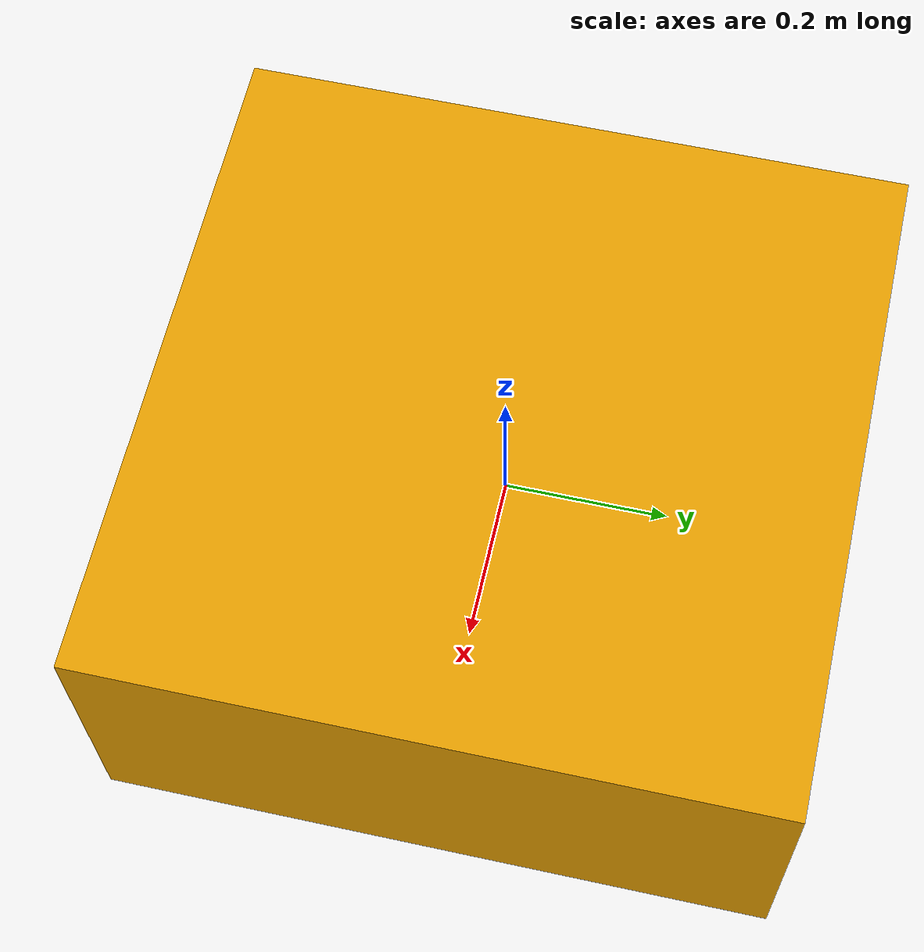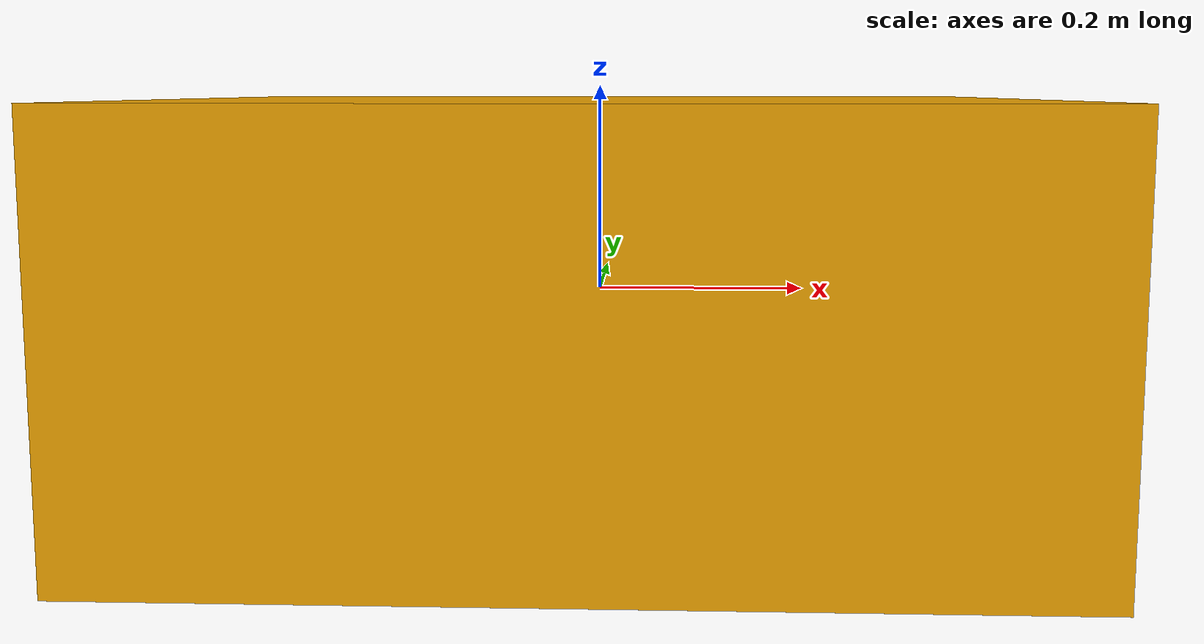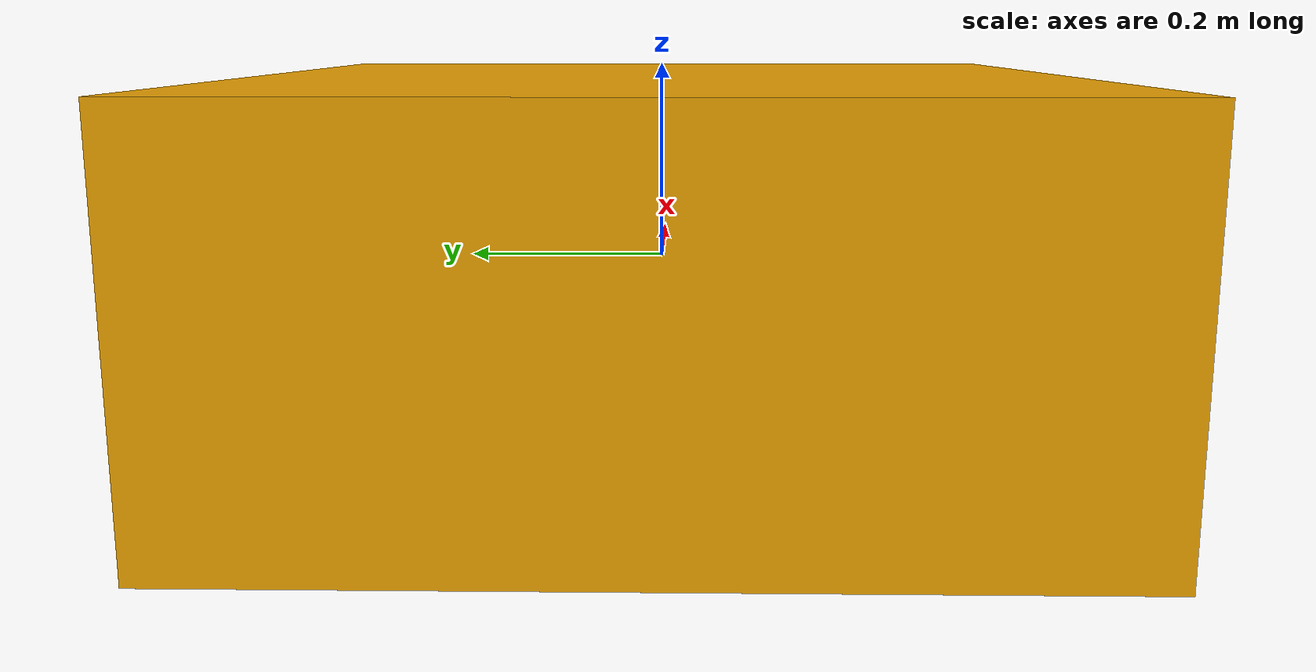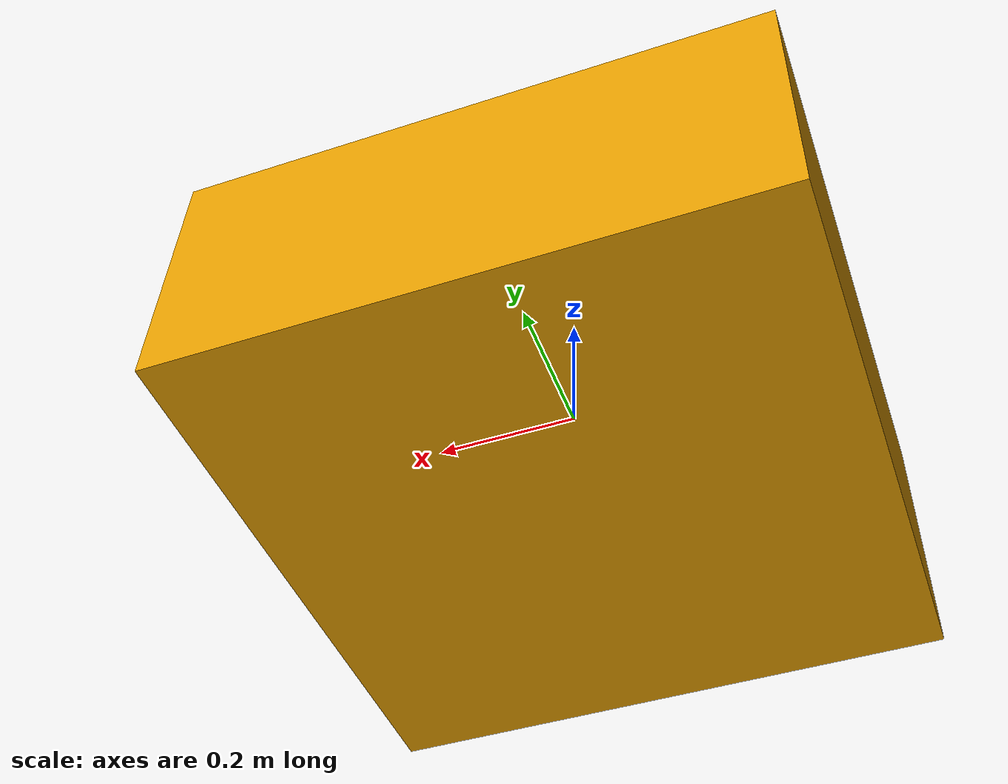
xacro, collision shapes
<?xml version='1.0' encoding='utf-8'?>
<robot name="M100" xmlns:xacro="http://ros.org/wiki/xacro">
  <xacro:arg name="name" default="M100"/>
  <xacro:property name="name" value="$(arg name)"/>
  <link name='${name}/base_link'>
    <inertial>
      <origin xyz='0 0 0' rpy='0 -0 0'/>
      <mass value='3.76'/>
      <inertia ixx='0.017' ixy='0' ixz='0' iyy='0.018' iyz='0' izz='0.028'/>
    </inertial>
    <collision name='base_link_inertia_collision'>
      <origin xyz='0 0 0' rpy='0 -0 0'/>
      <geometry>
        <box size='0.82 0.82 0.375'/>
      </geometry>
    </collision>
    <visual name='base_link_inertia_visual'>
      <origin xyz='0 0 0' rpy='0 -0 0'/>
      <geometry>
        <mesh filename='package://cerberus_m100_sensor_config_1/meshes/m100.dae' scale='1 1 1'/>
      </geometry>
    </visual>
    <visual name='left_flashlight_led'>
      <origin xyz='0.247592 0.24728 -0.017556' rpy='0 -0 2.35619'/>
      <geometry>
        <mesh filename='package://cerberus_m100_sensor_config_1/meshes/cree_xhp70.dae' scale='1 1 1'/>
      </geometry>
    </visual>
    <visual name='right_flashlight_led'>
      <origin xyz='0.247592 -0.24728 -0.017556' rpy='0 -0 0.785398'/>
      <geometry>
        <mesh filename='package://cerberus_m100_sensor_config_1/meshes/cree_xhp70.dae' scale='1 1 1'/>
      </geometry>
    </visual>
    <visual name='camera_visual'>
      <origin xyz='0.172 0 -0.023' rpy='0 0.174533 0'/>
      <geometry>
        <box size='0.02 0.025 0.025'/>
      </geometry>
    </visual>
    <visual name='laser_visual'>
      <origin xyz='0 0 0.05' rpy='0 -0 0'/>
      <geometry>
        <cylinder radius='0.03' length='0.1'/>
      </geometry>
    </visual>
  </link>

  <sensor name='imu_sensor' update_rate='200'>
    <parent link='${name}/base_link'/>
    <origin xyz='0 0 0' rpy='0 -0 0'/>
  </sensor>
  <sensor name='magnetometer' update_rate='20'>
    <parent link='${name}/base_link'/>
    <origin xyz='0 0 0' rpy='0 -0 0'/>
  </sensor>
  <sensor name='camera_front' update_rate='20'>
    <parent link='${name}/base_link'/>
    <origin xyz='0.172 0 -0.023' rpy='0 0.174533 0'/>
    <camera>
      <image width='1440' height='1080' format='R8G8B8' hfov='2.0944' near='0.02' far='100' />
    </camera>
  </sensor>
  <sensor name='front_laser' update_rate='10'>
    <parent link='${name}/base_link'/>
    <origin xyz='0 0 0.05' rpy='0 -0 0'/>
  </sensor>
  <link name='${name}/rotor_0'>
    <inertial>
      <origin xyz='0 0 0' rpy='0 -0 0'/>
      <mass value='0.005'/>
      <inertia ixx='9.75e-07' ixy='0' ixz='0' iyy='8.13545e-05' iyz='0' izz='8.22545e-05'/>
    </inertial>
    <collision name='rotor_0_collision'>
      <origin xyz='0 0 0' rpy='0 -0 0'/>
      <geometry>
        <cylinder radius='0.175' length='0.005'/>
      </geometry>
    </collision>
    <visual name='rotor_0_visual'>
      <origin xyz='0 0 0' rpy='0 -0 0'/>
      <geometry>
        <mesh filename='package://cerberus_m100_sensor_config_1/meshes/m100_propeller_ccw.dae' scale='0.175 0.175 0.175'/>
      </geometry>
    </visual>
  </link>
  <link name='${name}/rotor_1'>
    <inertial>
      <origin xyz='0 0 0' rpy='0 -0 0'/>
      <mass value='0.005'/>
      <inertia ixx='9.75e-07' ixy='0' ixz='0' iyy='8.13545e-05' iyz='0' izz='8.22545e-05'/>
    </inertial>
    <collision name='rotor_1_collision'>
      <origin xyz='0 0 0' rpy='0 -0 0'/>
      <geometry>
        <cylinder radius='0.175' length='0.005'/>
      </geometry>
    </collision>
    <visual name='rotor_1_visual'>
      <origin xyz='0 0 0' rpy='0 -0 0'/>
      <geometry>
        <mesh filename='package://cerberus_m100_sensor_config_1/meshes/m100_propeller_ccw.dae' scale='0.175 0.175 0.175'/>
      </geometry>
    </visual>
  </link>
  <link name='${name}/rotor_2'>
    <inertial>
      <origin xyz='0 0 0' rpy='0 -0 0'/>
      <mass value='0.005'/>
      <inertia ixx='9.75e-07' ixy='0' ixz='0' iyy='8.13545e-05' iyz='0' izz='8.22545e-05'/>
    </inertial>
    <collision name='rotor_2_collision'>
      <origin xyz='0 0 0' rpy='0 -0 0'/>
      <geometry>
        <cylinder radius='0.175' length='0.005'/>
      </geometry>
    </collision>
    <visual name='rotor_2_visual'>
      <origin xyz='0 0 0' rpy='0 -0 0'/>
      <geometry>
        <mesh filename='package://cerberus_m100_sensor_config_1/meshes/m100_propeller_cw.dae' scale='0.175 0.175 0.175'/>
      </geometry>
    </visual>
  </link>
  <link name='${name}/rotor_3'>
    <inertial>
      <origin xyz='0 0 0' rpy='0 -0 0'/>
      <mass value='0.005'/>
      <inertia ixx='9.75e-07' ixy='0' ixz='0' iyy='8.13545e-05' iyz='0' izz='8.22545e-05'/>
    </inertial>
    <collision name='rotor_3_collision'>
      <origin xyz='0 0 0' rpy='0 -0 0'/>
      <geometry>
        <cylinder radius='0.175' length='0.005'/>
      </geometry>
    </collision>
    <visual name='rotor_3_visual'>
      <origin xyz='0 0 0' rpy='0 -0 0'/>
      <geometry>
        <mesh filename='package://cerberus_m100_sensor_config_1/meshes/m100_propeller_cw.dae' scale='0.175 0.175 0.175'/>
      </geometry>
    </visual>
  </link>
  <joint name='rotor_0_joint' type='revolute'>
    <origin xyz='0.2263 -0.2263 0.038' rpy='0 -0 0'/>
    <parent link='${name}/base_link'/>
    <child link='${name}/rotor_0'/>
    <dynamics damping='0' friction='0' />
    <axis xyz='0 0 1'/>
    <limit lower='-1e+16' upper='1e+16' effort='0' velocity='0'/>
  </joint>
  <joint name='rotor_1_joint' type='revolute'>
    <origin xyz='-0.2263 0.2263 0.038' rpy='0 -0 0'/>
    <parent link='${name}/base_link'/>
    <child link='${name}/rotor_1'/>
    <dynamics damping='0' friction='0' />
    <axis xyz='0 0 1'/>
    <limit lower='-1e+16' upper='1e+16' effort='0' velocity='0'/>
  </joint>
  <joint name='rotor_2_joint' type='revolute'>
    <origin xyz='0.2263 0.2263 0.038' rpy='0 -0 0'/>
    <parent link='${name}/base_link'/>
    <child link='${name}/rotor_2'/>
    <dynamics damping='0' friction='0' />
    <axis xyz='0 0 1'/>
    <limit lower='-1e+16' upper='1e+16' effort='0' velocity='0'/>
  </joint>
  <joint name='rotor_3_joint' type='revolute'>
    <origin xyz='-0.2263 -0.2263 0.038' rpy='0 -0 0'/>
    <parent link='${name}/base_link'/>
    <child link='${name}/rotor_3'/>
    <dynamics damping='0' friction='0' />
    <axis xyz='0 0 1'/>
    <limit lower='-1e+16' upper='1e+16' effort='0' velocity='0'/>
  </joint>
</robot>
